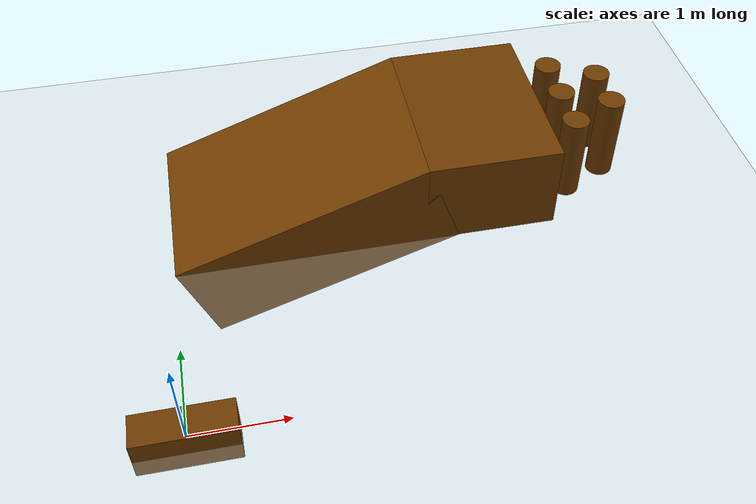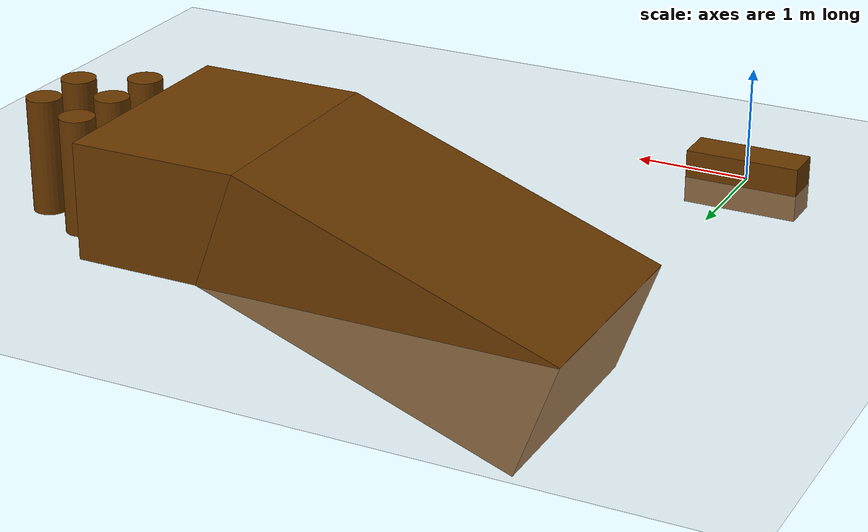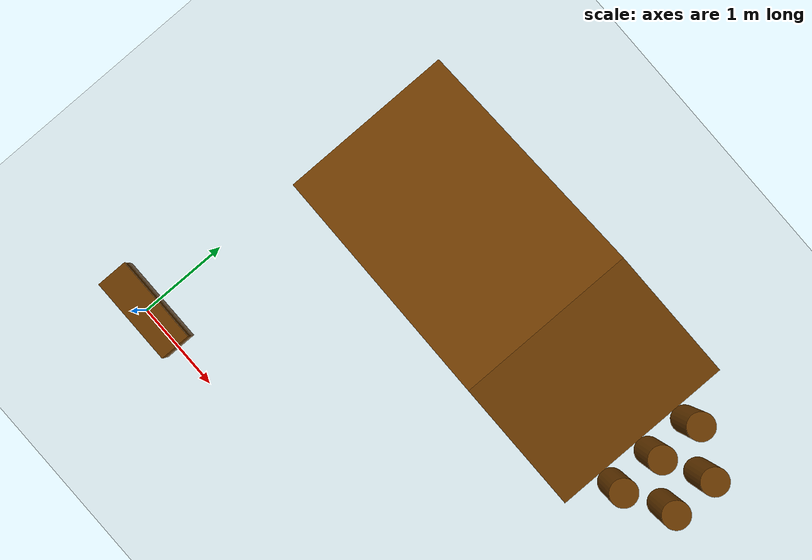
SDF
<?xml version="1.0" ?>
<sdf version="1.5">
    <world name="default">
        <physics type="ode">
        <!-- real_time_factor = max_step_size * real_time_update_rate, default equal to 1 -->
        <max_step_size>0.001</max_step_size>
        <real_time_update_rate>1000</real_time_update_rate>

        <gravity>0 0 -9.81</gravity>
            <ode>
                <solver>
                <type>quick</type>
                <iters>80</iters>
                <sor>1.3</sor>
                </solver>
                <constraints>
                <cfm>0.0</cfm>
                <erp>0.2</erp>
                <contact_max_correcting_vel>0.1</contact_max_correcting_vel>
                <contact_surface_layer>0.0001</contact_surface_layer>
                </constraints>
            </ode>
        </physics>

        <scene>
        <sky>
            <clouds>
                <speed>12</speed>
            </clouds>
        </sky>
        </scene>
        <!-- A global light source -->
        <include>
            <uri>model://sun</uri>
        </include>
        <!-- A ground plane -->
        <include>
            <uri>model://ground_plane</uri>
        </include>
        <!-- environment blocks, obstacles or stairs -->
        <model name="static_environment">
        <static>true</static>

            <link name="static_box">
                <pose>0 0 0 0 0 0</pose>
                <collision name="static_box_collision">
                    <geometry>
                        <box>
                            <size>1 0.35 0.475</size>
                        </box>
                    </geometry>
                </collision>
                <visual name="static_box_visual">
                    <geometry>
                        <box>
                            <size>1 0.35 0.475</size>
                        </box>
                    </geometry>
                    <material>
                        <ambient>0.2 0.2 0.2 1.0</ambient>
                        <diffuse>.421 0.225 0.0 1.0</diffuse>
                    </material>
                </visual>
            </link>

            <link name="slope">
                <pose>1.555725 3 0 0 -0.349 0</pose>
                <collision name="slope_collision">
                    <geometry>
                        <box>
                            <size>2.9238 2 1.06418</size>
                        </box>
                    </geometry>
                </collision>
                <visual name="slope_visual">
                    <geometry>
                        <box>
                            <size>2.9238 2 1.06418</size>
                        </box>
                    </geometry>
                    <material>
                        <ambient>0.2 0.2 0.2 1.0</ambient>
                        <diffuse>.421 0.225 0.0 1.0</diffuse>
                    </material>
                </visual>
            </link>

            <link name="platform">
                <pose>3.47248 3 0.5 0 0 0</pose>
                <collision name="platform_collision">
                    <geometry>
                        <box>
                            <size>1.45 2 1</size>
                        </box>
                    </geometry>
                </collision>
                <visual name="platform_visual">
                    <geometry>
                        <box>
                           <size>1.45 2 1</size>
                        </box>
                    </geometry>
                    <material>
                        <ambient>0.2 0.2 0.2 1.0</ambient>
                        <diffuse>.421 0.225 0.0 1.0</diffuse>
                    </material>
                </visual>
            </link>

            <link name="plum_blossom_pile1">
                <pose>4.5 2.5 0.5 0 0 0</pose>
                <collision name="plum_blossom_pile1_collision">
                    <geometry>
                        <cylinder>
                            <radius>0.15</radius>
                            <length>1.0</length>
                        </cylinder>
                    </geometry>
                </collision>
                <visual name="plum_blossom_pile1_visual">
                    <geometry>
                        <cylinder>
                            <radius>0.15</radius>
                            <length>1.0</length>
                        </cylinder>
                    </geometry>
                    <material>
                        <ambient>0.2 0.2 0.2 1.0</ambient>
                        <diffuse>.421 0.225 0.0 1.0</diffuse>
                    </material>
                </visual>
            </link>

            <link name="plum_blossom_pile2">
                <pose>4.5 3 0.5 0 0 0</pose>
                <collision name="plum_blossom_pile2_collision">
                    <geometry>
                        <cylinder>
                            <radius>0.15</radius>
                            <length>1.0</length>
                        </cylinder>
                    </geometry>
                </collision>
                <visual name="plum_blossom_pile2_visual">
                    <geometry>
                        <cylinder>
                            <radius>0.15</radius>
                            <length>1.0</length>
                        </cylinder>
                    </geometry>
                    <material>
                        <ambient>0.2 0.2 0.2 1.0</ambient>
                        <diffuse>.421 0.225 0.0 1.0</diffuse>
                    </material>
                </visual>
            </link>

            <link name="plum_blossom_pile3">
                <pose>4.5 3.5 0.5 0 0 0</pose>
                <collision name="plum_blossom_pile3_collision">
                    <geometry>
                        <cylinder>
                            <radius>0.15</radius>
                            <length>1.0</length>
                        </cylinder>
                    </geometry>
                </collision>
                <visual name="plum_blossom_pile3_visual">
                    <geometry>
                        <cylinder>
                            <radius>0.15</radius>
                            <length>1.0</length>
                        </cylinder>
                    </geometry>
                    <material>
                        <ambient>0.2 0.2 0.2 1.0</ambient>
                        <diffuse>.421 0.225 0.0 1.0</diffuse>
                    </material>
                </visual>
            </link>

            <link name="plum_blossom_pile4">
                <pose>5 2.75 0.5 0 0 0</pose>
                <collision name="plum_blossom_pile4_collision">
                    <geometry>
                        <cylinder>
                            <radius>0.15</radius>
                            <length>1.0</length>
                        </cylinder>
                    </geometry>
                </collision>
                <visual name="plum_blossom_pile4_visual">
                    <geometry>
                        <cylinder>
                            <radius>0.15</radius>
                            <length>1.0</length>
                        </cylinder>
                    </geometry>
                    <material>
                        <ambient>0.2 0.2 0.2 1.0</ambient>
                        <diffuse>.421 0.225 0.0 1.0</diffuse>
                    </material>
                </visual>
            </link>

            <link name="plum_blossom_pile5">
                <pose>5 3.25 0.5 0 0 0</pose>
                <collision name="plum_blossom_pile5_collision">
                    <geometry>
                        <cylinder>
                            <radius>0.15</radius>
                            <length>1.0</length>
                        </cylinder>
                    </geometry>
                </collision>
                <visual name="plum_blossom_pile5_visual">
                    <geometry>
                        <cylinder>
                            <radius>0.15</radius>
                            <length>1.0</length>
                        </cylinder>
                    </geometry>
                    <material>
                        <ambient>0.2 0.2 0.2 1.0</ambient>
                        <diffuse>.421 0.225 0.0 1.0</diffuse>
                    </material>
                </visual>
            </link>

        </model>
    </world>
</sdf>
